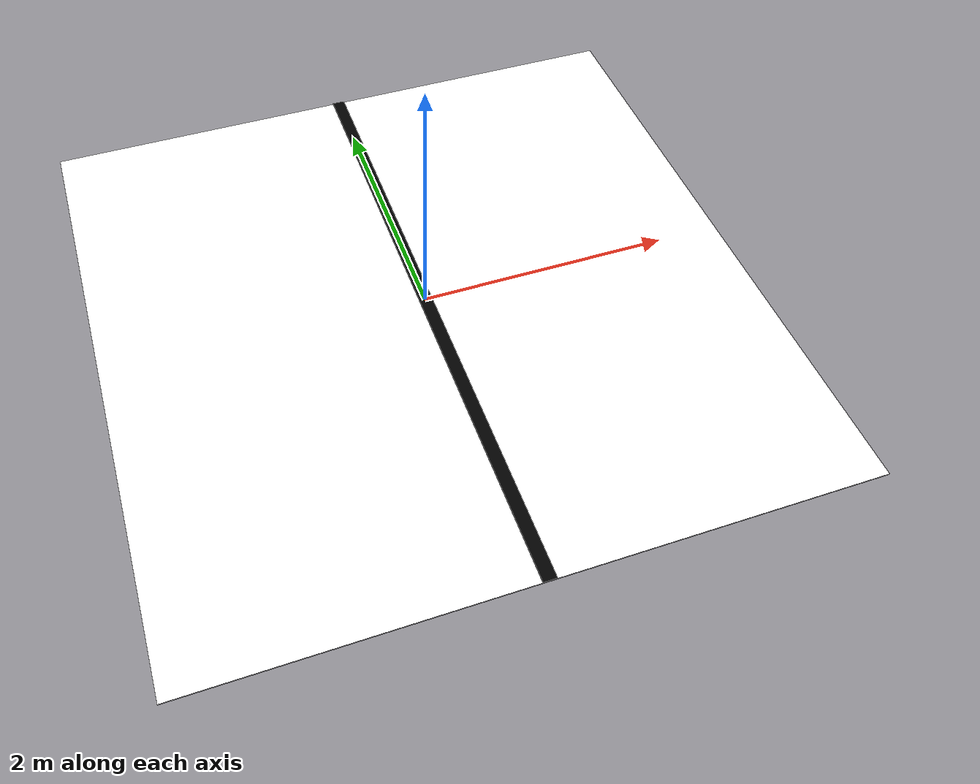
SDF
<?xml version="1.0" ?>
<sdf version="1.6">
  <model name="track_line">
    <static>true</static>
    <link name="track_link">
      <!-- White floor -->
      <visual name="floor_visual">
        <geometry>
          <box>
            <size>5 5 0.01</size>
          </box>
        </geometry>
        <material>
          <ambient>1 1 1 1</ambient>
          <diffuse>1 1 1 1</diffuse>
        </material>
      </visual>

      <!-- Black line strip -->
      <visual name="line_visual">
        <pose>0 0 0.01 0 0 0</pose>
        <geometry>
          <box>
            <size>0.1 5 0.01</size>
          </box>
        </geometry>
        <material>
          <ambient>0 0 0 1</ambient>
          <diffuse>0 0 0 1</diffuse>
        </material>
      </visual>
    </link>
  </model>
</sdf>
